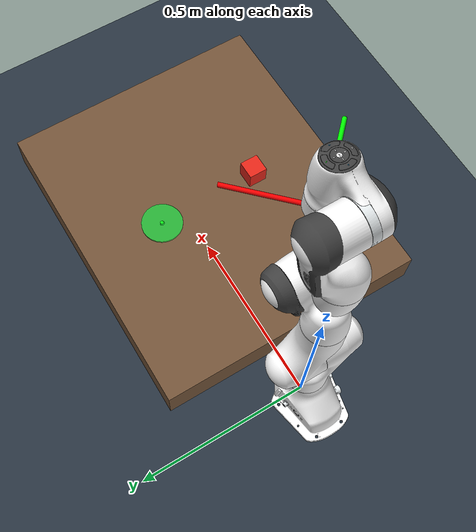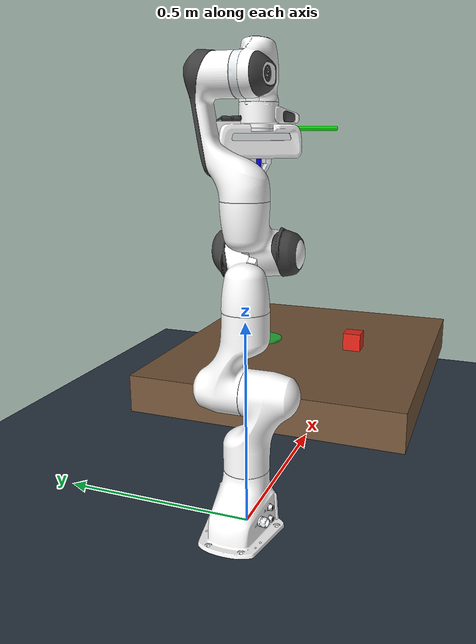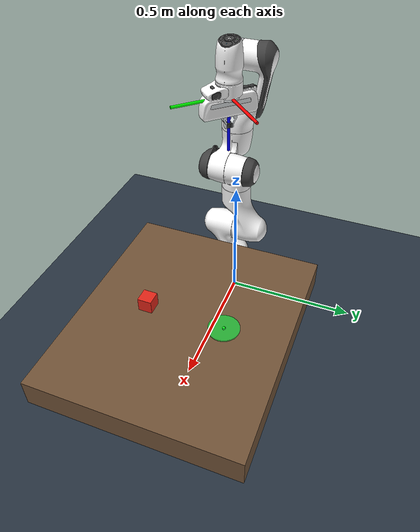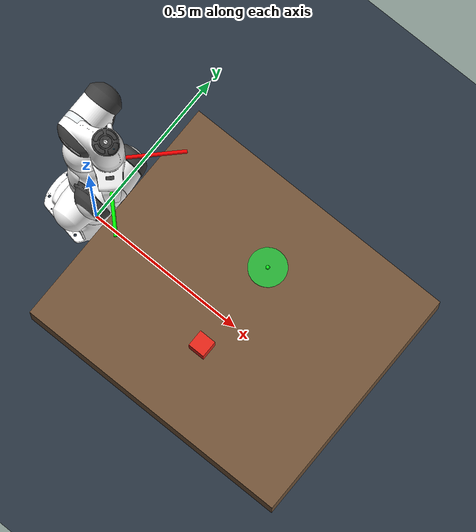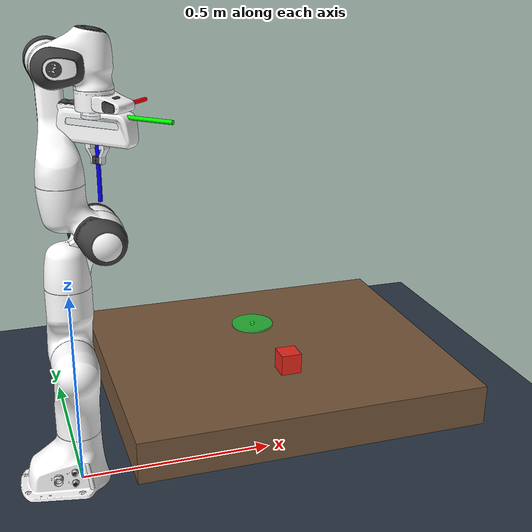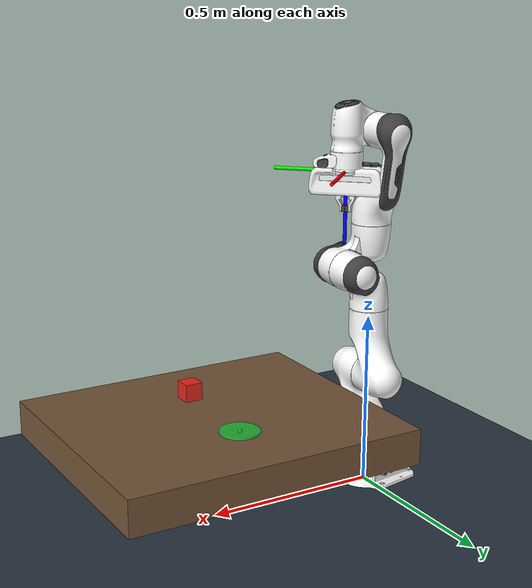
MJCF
<mujoco model="panda pick and place scene">
  <!--
    复用仓库里带位置执行器和夹爪的 Panda 模型。
    本文件只定义任务场景，不修改 Panda 本体，方便与其他示例互不影响。
  -->
  <include file="panda_pos.xml"/>

  <statistic center="0.45 0 0.45" extent="1.0"/>

  <visual>
    <headlight diffuse="0.7 0.7 0.7" ambient="0.35 0.35 0.35" specular="0.1 0.1 0.1"/>
    <rgba haze="0.15 0.20 0.25 1"/>
    <global azimuth="135" elevation="-25"/>
  </visual>

  <asset>
    <texture type="skybox" builtin="gradient" rgb1="0.35 0.50 0.70" rgb2="0.03 0.03 0.05"
             width="512" height="3072"/>
    <texture type="2d" name="pick_place_floor_texture" builtin="checker" mark="edge"
             rgb1="0.22 0.28 0.34" rgb2="0.10 0.13 0.17" markrgb="0.75 0.75 0.75"
             width="300" height="300"/>
    <material name="pick_place_floor_material" texture="pick_place_floor_texture"
              texuniform="true" texrepeat="5 5" reflectance="0.12"/>
    <material name="table_material" rgba="0.45 0.33 0.22 1" specular="0.15" shininess="0.15"/>
    <material name="cube_material" rgba="0.90 0.15 0.10 1" specular="0.25" shininess="0.25"/>
  </asset>

  <worldbody>
    <light pos="0.3 -0.4 1.5" dir="0.1 0.2 -1" directional="true"/>
    <geom name="floor" type="plane" size="0 0 0.05" material="pick_place_floor_material"/>

    <!-- 桌面中心在 x=0.5 m，桌面上表面的世界坐标高度为 z=0.30 m。 -->
    <body name="table" pos="0.50 0 0.25">
      <geom name="table_top" type="box" size="0.42 0.36 0.05"
            material="table_material" friction="1.0 0.02 0.002"/>
    </body>

    <!--
      绿色圆盘只是放置目标的可视标记，不参与碰撞。
      目标中心和半径会由 Python 脚本读取并用于成功判定。
    -->
    <body name="place_target" pos="0.50 0.14 0.303">
      <geom name="place_target_marker" type="cylinder" size="0.055 0.003"
            rgba="0.10 0.85 0.25 0.75" contype="0" conaffinity="0" group="2"/>
      <site name="place_target_center" size="0.006" rgba="0.05 1 0.1 1" group="2"/>
    </body>

    <!--
      红色方块使用 freejoint，因此可以被夹爪抓起并自由运动。
      方块边长为 50 mm，初始时放在目标区另一侧。
    -->
    <body name="pick_cube" pos="0.50 -0.14 0.326">
      <freejoint name="pick_cube_freejoint"/>
      <geom name="pick_cube_geom" type="box" size="0.025 0.025 0.025"
            mass="0.08" material="cube_material"
            friction="1.5 0.03 0.003" solref="0.006 1" solimp="0.95 0.99 0.001"/>
    </body>

    <!--
      两个固定相机为后续制作视觉数据集预留。
      top_camera 俯视桌面；front_camera 从斜前方观察机械臂和任务区。
    -->
    <camera name="top_camera" pos="0.50 0 1.20" quat="1 0 0 0" fovy="42"/>
    <camera name="front_camera" pos="1.05 -0.75 0.75"
            xyaxes="0.806 0.591 0 -0.216 0.295 0.931" fovy="45"/>
  </worldbody>

  <!--
    完整 keyframe：7个机械臂关节 + 2个手指关节 + 方块freejoint的7个qpos。
    机械臂末端初始时垂直向下，便于只控制XYZ就完成抓取放置。
  -->
  <keyframe>
    <key name="pick_place_home"
         qpos="0 -0.785398 0 -2.356194 0 1.570796 0.785398 0.04 0.04 0.50 -0.14 0.326 1 0 0 0"
         ctrl="0 -0.785398 0 -2.356194 0 1.570796 0.785398 255"/>
  </keyframe>
</mujoco>

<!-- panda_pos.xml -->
<mujoco model="panda">
  <compiler angle="radian" meshdir="assets" autolimits="true"/>

  <option integrator="implicitfast"/>

  <default>
    <default class="panda">
      <material specular="0.5" shininess="0.25"/>
      <joint armature="0.1" damping="1" axis="0 0 1" range="-2.8973 2.8973"/>
      <general dyntype="none" biastype="affine" ctrlrange="-2.8973 2.8973" forcerange="-87 87"/>
      <default class="finger">
        <joint axis="0 1 0" type="slide" range="0 0.04"/>
      </default>

      <default class="visual">
        <geom type="mesh" contype="0" conaffinity="0" group="2"/>
      </default>
      <default class="collision">
        <geom type="mesh" group="3"/>
        <default class="fingertip_pad_collision_1">
          <geom type="box" size="0.0085 0.004 0.0085" pos="0 0.0055 0.0445"/>
        </default>
        <default class="fingertip_pad_collision_2">
          <geom type="box" size="0.003 0.002 0.003" pos="0.0055 0.002 0.05"/>
        </default>
        <default class="fingertip_pad_collision_3">
          <geom type="box" size="0.003 0.002 0.003" pos="-0.0055 0.002 0.05"/>
        </default>
        <default class="fingertip_pad_collision_4">
          <geom type="box" size="0.003 0.002 0.0035" pos="0.0055 0.002 0.0395"/>
        </default>
        <default class="fingertip_pad_collision_5">
          <geom type="box" size="0.003 0.002 0.0035" pos="-0.0055 0.002 0.0395"/>
        </default>
      </default>
    </default>
  </default>

  <asset>
    <material class="panda" name="white" rgba="1 1 1 1"/>
    <material class="panda" name="off_white" rgba="0.901961 0.921569 0.929412 1"/>
    <material class="panda" name="black" rgba="0.25 0.25 0.25 1"/>
    <material class="panda" name="green" rgba="0 1 0 1"/>
    <material class="panda" name="light_blue" rgba="0.039216 0.541176 0.780392 1"/>

    <!-- Collision meshes -->
    <mesh name="link0_c" file="link0.stl"/>
    <mesh name="link1_c" file="link1.stl"/>
    <mesh name="link2_c" file="link2.stl"/>
    <mesh name="link3_c" file="link3.stl"/>
    <mesh name="link4_c" file="link4.stl"/>
    <mesh name="link5_c0" file="link5_collision_0.obj"/>
    <mesh name="link5_c1" file="link5_collision_1.obj"/>
    <mesh name="link5_c2" file="link5_collision_2.obj"/>
    <mesh name="link6_c" file="link6.stl"/>
    <mesh name="link7_c" file="link7.stl"/>
    <mesh name="hand_c" file="hand.stl"/>

    <!-- Visual meshes -->
    <mesh file="link0_0.obj"/>
    <mesh file="link0_1.obj"/>
    <mesh file="link0_2.obj"/>
    <mesh file="link0_3.obj"/>
    <mesh file="link0_4.obj"/>
    <mesh file="link0_5.obj"/>
    <mesh file="link0_7.obj"/>
    <mesh file="link0_8.obj"/>
    <mesh file="link0_9.obj"/>
    <mesh file="link0_10.obj"/>
    <mesh file="link0_11.obj"/>
    <mesh file="link1.obj"/>
    <mesh file="link2.obj"/>
    <mesh file="link3_0.obj"/>
    <mesh file="link3_1.obj"/>
    <mesh file="link3_2.obj"/>
    <mesh file="link3_3.obj"/>
    <mesh file="link4_0.obj"/>
    <mesh file="link4_1.obj"/>
    <mesh file="link4_2.obj"/>
    <mesh file="link4_3.obj"/>
    <mesh file="link5_0.obj"/>
    <mesh file="link5_1.obj"/>
    <mesh file="link5_2.obj"/>
    <mesh file="link6_0.obj"/>
    <mesh file="link6_1.obj"/>
    <mesh file="link6_2.obj"/>
    <mesh file="link6_3.obj"/>
    <mesh file="link6_4.obj"/>
    <mesh file="link6_5.obj"/>
    <mesh file="link6_6.obj"/>
    <mesh file="link6_7.obj"/>
    <mesh file="link6_8.obj"/>
    <mesh file="link6_9.obj"/>
    <mesh file="link6_10.obj"/>
    <mesh file="link6_11.obj"/>
    <mesh file="link6_12.obj"/>
    <mesh file="link6_13.obj"/>
    <mesh file="link6_14.obj"/>
    <mesh file="link6_15.obj"/>
    <mesh file="link6_16.obj"/>
    <mesh file="link7_0.obj"/>
    <mesh file="link7_1.obj"/>
    <mesh file="link7_2.obj"/>
    <mesh file="link7_3.obj"/>
    <mesh file="link7_4.obj"/>
    <mesh file="link7_5.obj"/>
    <mesh file="link7_6.obj"/>
    <mesh file="link7_7.obj"/>
    <mesh file="hand_0.obj"/>
    <mesh file="hand_1.obj"/>
    <mesh file="hand_2.obj"/>
    <mesh file="hand_3.obj"/>
    <mesh file="hand_4.obj"/>
    <mesh file="finger_0.obj"/>
    <mesh file="finger_1.obj"/>
  </asset>

  <worldbody>
    <light name="top" pos="0 0 2" mode="trackcom"/>
    <body name="link0" childclass="panda">
      <inertial mass="0.629769" pos="-0.041018 -0.00014 0.049974"
        fullinertia="0.00315 0.00388 0.004285 8.2904e-7 0.00015 8.2299e-6"/>
      <geom mesh="link0_0" material="off_white" class="visual"/>
      <geom mesh="link0_1" material="black" class="visual"/>
      <geom mesh="link0_2" material="off_white" class="visual"/>
      <geom mesh="link0_3" material="black" class="visual"/>
      <geom mesh="link0_4" material="off_white" class="visual"/>
      <geom mesh="link0_5" material="black" class="visual"/>
      <geom mesh="link0_7" material="white" class="visual"/>
      <geom mesh="link0_8" material="white" class="visual"/>
      <geom mesh="link0_9" material="black" class="visual"/>
      <geom mesh="link0_10" material="off_white" class="visual"/>
      <geom mesh="link0_11" material="white" class="visual"/>
      <geom mesh="link0_c" class="collision"/>
      <body name="link1" pos="0 0 0.333">
        <inertial mass="4.970684" pos="0.003875 0.002081 -0.04762"
          fullinertia="0.70337 0.70661 0.0091170 -0.00013900 0.0067720 0.019169"/>
        <joint name="joint1"/>
        <geom material="white" mesh="link1" class="visual"/>
        <geom mesh="link1_c" class="collision"/>
        <body name="link2" quat="1 -1 0 0">
          <inertial mass="0.646926" pos="-0.003141 -0.02872 0.003495"
            fullinertia="0.0079620 2.8110e-2 2.5995e-2 -3.925e-3 1.0254e-2 7.04e-4"/>
          <joint name="joint2" range="-1.7628 1.7628"/>
          <geom material="white" mesh="link2" class="visual"/>
          <geom mesh="link2_c" class="collision"/>
          <body name="link3" pos="0 -0.316 0" quat="1 1 0 0">
            <joint name="joint3"/>
            <inertial mass="3.228604" pos="2.7518e-2 3.9252e-2 -6.6502e-2"
              fullinertia="3.7242e-2 3.6155e-2 1.083e-2 -4.761e-3 -1.1396e-2 -1.2805e-2"/>
            <geom mesh="link3_0" material="white" class="visual"/>
            <geom mesh="link3_1" material="white" class="visual"/>
            <geom mesh="link3_2" material="white" class="visual"/>
            <geom mesh="link3_3" material="black" class="visual"/>
            <geom mesh="link3_c" class="collision"/>
            <body name="link4" pos="0.0825 0 0" quat="1 1 0 0">
              <inertial mass="3.587895" pos="-5.317e-2 1.04419e-1 2.7454e-2"
                fullinertia="2.5853e-2 1.9552e-2 2.8323e-2 7.796e-3 -1.332e-3 8.641e-3"/>
              <joint name="joint4" range="-3.0718 -0.0698"/>
              <geom mesh="link4_0" material="white" class="visual"/>
              <geom mesh="link4_1" material="white" class="visual"/>
              <geom mesh="link4_2" material="black" class="visual"/>
              <geom mesh="link4_3" material="white" class="visual"/>
              <geom mesh="link4_c" class="collision"/>
              <body name="link5" pos="-0.0825 0.384 0" quat="1 -1 0 0">
                <inertial mass="1.225946" pos="-1.1953e-2 4.1065e-2 -3.8437e-2"
                  fullinertia="3.5549e-2 2.9474e-2 8.627e-3 -2.117e-3 -4.037e-3 2.29e-4"/>
                <joint name="joint5"/>
                <geom mesh="link5_0" material="black" class="visual"/>
                <geom mesh="link5_1" material="white" class="visual"/>
                <geom mesh="link5_2" material="white" class="visual"/>
                <geom mesh="link5_c0" class="collision"/>
                <geom mesh="link5_c1" class="collision"/>
                <geom mesh="link5_c2" class="collision"/>
                <body name="link6" quat="1 1 0 0">
                  <inertial mass="1.666555" pos="6.0149e-2 -1.4117e-2 -1.0517e-2"
                    fullinertia="1.964e-3 4.354e-3 5.433e-3 1.09e-4 -1.158e-3 3.41e-4"/>
                  <joint name="joint6" range="-0.0175 3.7525"/>
                  <geom mesh="link6_0" material="off_white" class="visual"/>
                  <geom mesh="link6_1" material="white" class="visual"/>
                  <geom mesh="link6_2" material="black" class="visual"/>
                  <geom mesh="link6_3" material="white" class="visual"/>
                  <geom mesh="link6_4" material="white" class="visual"/>
                  <geom mesh="link6_5" material="white" class="visual"/>
                  <geom mesh="link6_6" material="white" class="visual"/>
                  <geom mesh="link6_7" material="light_blue" class="visual"/>
                  <geom mesh="link6_8" material="light_blue" class="visual"/>
                  <geom mesh="link6_9" material="black" class="visual"/>
                  <geom mesh="link6_10" material="black" class="visual"/>
                  <geom mesh="link6_11" material="white" class="visual"/>
                  <geom mesh="link6_12" material="green" class="visual"/>
                  <geom mesh="link6_13" material="white" class="visual"/>
                  <geom mesh="link6_14" material="black" class="visual"/>
                  <geom mesh="link6_15" material="black" class="visual"/>
                  <geom mesh="link6_16" material="white" class="visual"/>
                  <geom mesh="link6_c" class="collision"/>
                  <body name="link7" pos="0.088 0 0" quat="1 1 0 0">
                    <inertial mass="7.35522e-01" pos="1.0517e-2 -4.252e-3 6.1597e-2"
                      fullinertia="1.2516e-2 1.0027e-2 4.815e-3 -4.28e-4 -1.196e-3 -7.41e-4"/>
                    <joint name="joint7"/>
                    <geom mesh="link7_0" material="white" class="visual"/>
                    <geom mesh="link7_1" material="black" class="visual"/>
                    <geom mesh="link7_2" material="black" class="visual"/>
                    <geom mesh="link7_3" material="black" class="visual"/>
                    <geom mesh="link7_4" material="black" class="visual"/>
                    <geom mesh="link7_5" material="black" class="visual"/>
                    <geom mesh="link7_6" material="black" class="visual"/>
                    <geom mesh="link7_7" material="white" class="visual"/>
                    <geom mesh="link7_c" class="collision"/>
                    <body name="hand" pos="0 0 0.107" quat="0.9238795 0 0 -0.3826834">
                      <inertial mass="0.73" pos="-0.01 0 0.03" diaginertia="0.001 0.0025 0.0017"/>
                      <geom mesh="hand_0" material="off_white" class="visual"/>
                      <geom mesh="hand_1" material="black" class="visual"/>
                      <geom mesh="hand_2" material="black" class="visual"/>
                      <geom mesh="hand_3" material="white" class="visual"/>
                      <geom mesh="hand_4" material="off_white" class="visual"/>
                      <geom mesh="hand_c" class="collision"/>
                      <site name="ee_ft_site" pos="0 0 0.105" size="0.008"
                            rgba="1 0.5 0 0.5" group="3"/>

                      <!-- refer to the panda_grasptarget in panda.urdf in panda_gym -->
                        <body name="ee_center_body" pos="0 0 0.105" quat="1 0 0 0">
                            <site name='ee_center_site' size="0.01" group="3"/>
                        </body>
                        <body name="ee_center_quat" pos="0 0 0">
                          <geom name="ee_x" type="cylinder" size="0.005" fromto="0 0 0 0.2 0 0" rgba="1 0 0 1" contype="0"
                                conaffinity="0"/>
                          <geom name="ee_y" type="cylinder" size="0.005" fromto="0 0 0 0 0.2 0" rgba="0 1 0 1" contype="0"
                                conaffinity="0"/>
                          <geom name="ee_z" type="cylinder" size="0.005" fromto="0 0 0 0 0 0.2" rgba="0 0 1 1" contype="0"
                                conaffinity="0"/>
                        </body>

                      <body name="left_finger" pos="0 0 0.0584">
                        <inertial mass="0.015" pos="0 0 0" diaginertia="2.375e-6 2.375e-6 7.5e-7"/>
                        <joint name="finger_joint1" class="finger"/>
                        <geom mesh="finger_0" material="off_white" class="visual"/>
                        <geom mesh="finger_1" material="black" class="visual"/>
                        <geom mesh="finger_0" class="collision"/>
                        <geom class="fingertip_pad_collision_1"/>
                        <geom class="fingertip_pad_collision_2"/>
                        <geom class="fingertip_pad_collision_3"/>
                        <geom class="fingertip_pad_collision_4"/>
                        <geom class="fingertip_pad_collision_5"/>
                      </body>
                      <body name="right_finger" pos="0 0 0.0584" quat="0 0 0 1">
                        <inertial mass="0.015" pos="0 0 0" diaginertia="2.375e-6 2.375e-6 7.5e-7"/>
                        <joint name="finger_joint2" class="finger"/>
                        <geom mesh="finger_0" material="off_white" class="visual"/>
                        <geom mesh="finger_1" material="black" class="visual"/>
                        <geom mesh="finger_0" class="collision"/>
                        <geom class="fingertip_pad_collision_1"/>
                        <geom class="fingertip_pad_collision_2"/>
                        <geom class="fingertip_pad_collision_3"/>
                        <geom class="fingertip_pad_collision_4"/>
                        <geom class="fingertip_pad_collision_5"/>
                      </body>
                    </body>
                  </body>
                </body>
              </body>
            </body>
          </body>
        </body>
      </body>
    </body>
  </worldbody>

  <tendon>
    <fixed name="split">
      <joint joint="finger_joint1" coef="0.5"/>
      <joint joint="finger_joint2" coef="0.5"/>
    </fixed>
  </tendon>

  <equality>
    <joint joint1="finger_joint1" joint2="finger_joint2" solimp="0.95 0.99 0.001" solref="0.005 1"/>
  </equality>

  <actuator>
    <position name="joint1_pos" joint="joint1" kp="800" kv="80" ctrlrange="-6.28 6.28" gear="1.0"/>
    <position name="joint2_pos" joint="joint2" kp="800" kv="80" ctrlrange="-6.28 6.28" gear="1.0"/>
    <position name="joint3_pos" joint="joint3" kp="800" kv="80" ctrlrange="-6.28 6.28" gear="1.0"/>
    <position name="joint4_pos" joint="joint4" kp="800" kv="80" ctrlrange="-6.28 6.28" gear="1.0"/>
    <position name="joint5_pos" joint="joint5" kp="800" kv="80" ctrlrange="-6.28 6.28" gear="1.0"/>
    <position name="joint6_pos" joint="joint6" kp="800" kv="80" ctrlrange="-6.28 6.28" gear="1.0"/>
    <position name="joint7_pos" joint="joint7" kp="800" kv="80" ctrlrange="-6.28 6.28" gear="1.0"/>

    <!-- 保留抓手控制 -->
    <general class="panda" name="actuator8" tendon="split"
             forcerange="-100 100" ctrlrange="0 255"
             gainprm="0.01568627451 0" biasprm="0 -100 -10"/>
  </actuator>

  <!-- MuJoCo represents a six-axis F/T sensor as one 3-axis force sensor
       plus one 3-axis torque sensor.  Both outputs use ee_ft_site's frame. -->
  <sensor>
    <force name="ee_force" site="ee_ft_site"/>
    <torque name="ee_torque" site="ee_ft_site"/>
  </sensor>

  <keyframe>
    <key name="home" qpos="0 0 0 -1.57079 0 3.0 -1.7853 0.04 0.04" ctrl="0 0 0 -1.57079 0 1.57079 -0.7853 255"/>
  </keyframe>

  <contact>
    <exclude body1="link0" body2="link1"/>
  </contact>
</mujoco>
